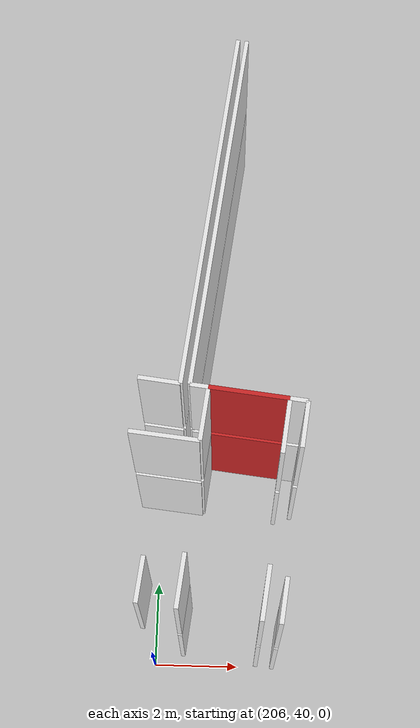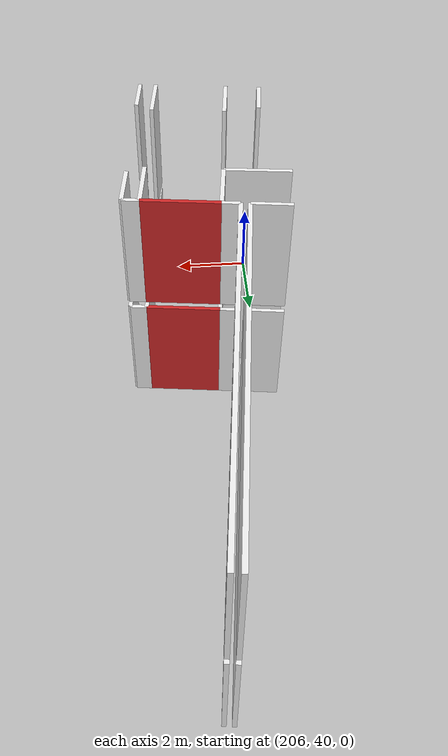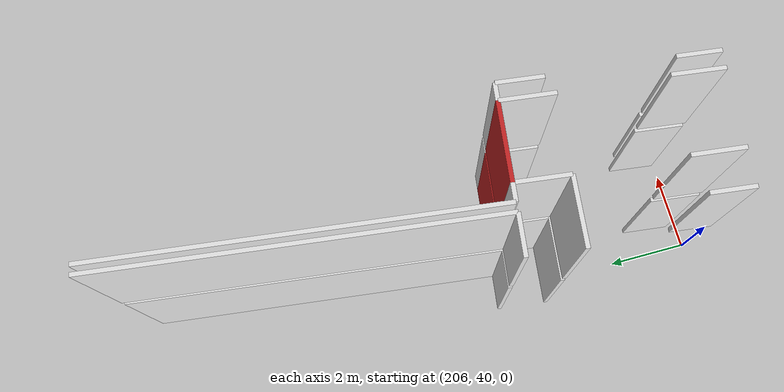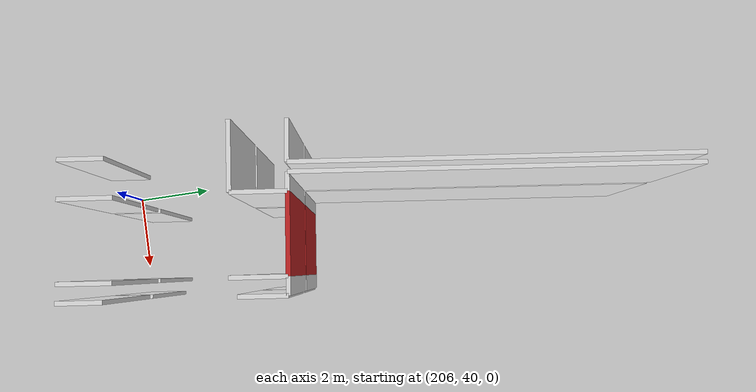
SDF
<sdf version="1.6">
 <world name="default">
  <model name="wall_208.1_45.0_0.0">
   <static>true</static>
   <pose>208.09500000000116 45.0 1.5 0 0 3.0193009299849303</pose>
   <link name="link">
    <visual name="visual">
     <geometry><box><size>1.8034688796345346 0.1 3</size></box></geometry>
     <material>
      <script><uri>file://media/materials/scripts/gazebo.material</uri><name>Gazebo/Red</name></script>
     </material>
    </visual>
   </link>
  </model>
  <model name="wall_207.1_49.6_0.0">
   <static>true</static>
   <pose>207.11999999999534 49.62000000011176 1.5 0 0 -1.6918235466009592</pose>
   <link name="link">
    <visual name="visual">
     <geometry><box><size>8.945434589662185 0.1 3</size></box></geometry>
     <material>
      <script><uri>file://media/materials/scripts/gazebo.material</uri><name>Gazebo/White</name></script>
     </material>
    </visual>
   </link>
  </model>
  <model name="wall_206.1_45.2_0.0">
   <static>true</static>
   <pose>206.11000000001513 45.23999999999069 1.5 0 0 3.0146198643464803</pose>
   <link name="link">
    <visual name="visual">
     <geometry><box><size>0.9476286191960649 0.1 3</size></box></geometry>
     <material>
      <script><uri>file://media/materials/scripts/gazebo.material</uri><name>Gazebo/White</name></script>
     </material>
    </visual>
   </link>
  </model>
  <model name="wall_208.5_40.6_0.0">
   <static>true</static>
   <pose>208.52499999999418 40.625 1.5 0 0 -1.6961854470647963</pose>
   <link name="link">
    <visual name="visual">
     <geometry><box><size>1.1994165252174924 0.1 3</size></box></geometry>
     <material>
      <script><uri>file://media/materials/scripts/gazebo.material</uri><name>Gazebo/White</name></script>
     </material>
    </visual>
   </link>
  </model>
  <model name="wall_206.7_40.8_0.0">
   <static>true</static>
   <pose>206.7399999999907 40.83500000019558 1.5 0 0 1.4536875822110042</pose>
   <link name="link">
    <visual name="visual">
     <geometry><box><size>1.198206993749794 0.1 3</size></box></geometry>
     <material>
      <script><uri>file://media/materials/scripts/gazebo.material</uri><name>Gazebo/White</name></script>
     </material>
    </visual>
   </link>
  </model>
  <model name="wall_206.3_44.0_0.0">
   <static>true</static>
   <pose>206.26999999998952 43.96999999997206 1.5 0 0 -0.11487660552311749</pose>
   <link name="link">
    <visual name="visual">
     <geometry><box><size>1.5703502794131905 0.1 3</size></box></geometry>
     <material>
      <script><uri>file://media/materials/scripts/gazebo.material</uri><name>Gazebo/White</name></script>
     </material>
    </visual>
   </link>
  </model>
  <model name="wall_207.1_44.5_0.0">
   <static>true</static>
   <pose>207.125 44.49499999987893 1.5 0 0 1.4494443262036614</pose>
   <link name="link">
    <visual name="visual">
     <geometry><box><size>1.239112585668132 0.1 3</size></box></geometry>
     <material>
      <script><uri>file://media/materials/scripts/gazebo.material</uri><name>Gazebo/White</name></script>
     </material>
    </visual>
   </link>
  </model>
  <model name="wall_208.9_44.3_0.0">
   <static>true</static>
   <pose>208.91500000000815 44.265000000130385 1.5 0 0 -1.690225252785692</pose>
   <link name="link">
    <visual name="visual">
     <geometry><box><size>1.258967831197256 0.1 3</size></box></geometry>
     <material>
      <script><uri>file://media/materials/scripts/gazebo.material</uri><name>Gazebo/White</name></script>
     </material>
    </visual>
   </link>
  </model>
  <model name="wall_209.3_44.3_0.0">
   <static>true</static>
   <pose>209.32500000001164 44.30999999982305 1.5 0 0 1.4487642084439392</pose>
   <link name="link">
    <visual name="visual">
     <geometry><box><size>1.0679419460437327 0.1 3</size></box></geometry>
     <material>
      <script><uri>file://media/materials/scripts/gazebo.material</uri><name>Gazebo/White</name></script>
     </material>
    </visual>
   </link>
  </model>
  <model name="wall_209.2_44.9_0.0">
   <static>true</static>
   <pose>209.19000000000233 44.86499999999069 1.5 0 0 3.01723765836245</pose>
   <link name="link">
    <visual name="visual">
     <geometry><box><size>0.4031128874726857 0.1 3</size></box></geometry>
     <material>
      <script><uri>file://media/materials/scripts/gazebo.material</uri><name>Gazebo/White</name></script>
     </material>
    </visual>
   </link>
  </model>
  <model name="wall_207.0_45.1_0.0">
   <static>true</static>
   <pose>206.99499999999534 45.13500000000931 1.5 0 0 3.0202406523571135</pose>
   <link name="link">
    <visual name="visual">
     <geometry><box><size>0.4130375286274464 0.1 3</size></box></geometry>
     <material>
      <script><uri>file://media/materials/scripts/gazebo.material</uri><name>Gazebo/White</name></script>
     </material>
    </visual>
   </link>
  </model>
  <model name="wall_207.3_49.6_0.0">
   <static>true</static>
   <pose>207.3299999999872 49.59499999997206 1.5 0 0 1.4496339921322956</pose>
   <link name="link">
    <visual name="visual">
     <geometry><box><size>8.935507819578973 0.1 3</size></box></geometry>
     <material>
      <script><uri>file://media/materials/scripts/gazebo.material</uri><name>Gazebo/White</name></script>
     </material>
    </visual>
   </link>
  </model>
  <model name="wall_208.9_40.5_0.0">
   <static>true</static>
   <pose>208.9099999999744 40.47500000009313 1.5 0 0 1.4501726582463998</pose>
   <link name="link">
    <visual name="visual">
     <geometry><box><size>0.9972462085370126 0.1 3</size></box></geometry>
     <material>
      <script><uri>file://media/materials/scripts/gazebo.material</uri><name>Gazebo/White</name></script>
     </material>
    </visual>
   </link>
  </model>
  <model name="wall_208.1_45.0_3.2">
   <static>true</static>
   <pose>208.09500000000116 45.0 4.7 0 0 3.0193009299849303</pose>
   <link name="link">
    <visual name="visual">
     <geometry><box><size>1.8034688796345346 0.1 3</size></box></geometry>
     <material>
      <script><uri>file://media/materials/scripts/gazebo.material</uri><name>Gazebo/Red</name></script>
     </material>
    </visual>
   </link>
  </model>
  <model name="wall_207.1_49.6_3.2">
   <static>true</static>
   <pose>207.11999999999534 49.62000000011176 4.7 0 0 -1.6918235466009592</pose>
   <link name="link">
    <visual name="visual">
     <geometry><box><size>8.945434589662185 0.1 3</size></box></geometry>
     <material>
      <script><uri>file://media/materials/scripts/gazebo.material</uri><name>Gazebo/White</name></script>
     </material>
    </visual>
   </link>
  </model>
  <model name="wall_206.1_45.2_3.2">
   <static>true</static>
   <pose>206.11000000001513 45.23999999999069 4.7 0 0 3.0146198643464803</pose>
   <link name="link">
    <visual name="visual">
     <geometry><box><size>0.9476286191960649 0.1 3</size></box></geometry>
     <material>
      <script><uri>file://media/materials/scripts/gazebo.material</uri><name>Gazebo/White</name></script>
     </material>
    </visual>
   </link>
  </model>
  <model name="wall_208.5_40.6_3.2">
   <static>true</static>
   <pose>208.52499999999418 40.625 4.7 0 0 -1.6961854470647963</pose>
   <link name="link">
    <visual name="visual">
     <geometry><box><size>1.1994165252174924 0.1 3</size></box></geometry>
     <material>
      <script><uri>file://media/materials/scripts/gazebo.material</uri><name>Gazebo/White</name></script>
     </material>
    </visual>
   </link>
  </model>
  <model name="wall_206.7_40.8_3.2">
   <static>true</static>
   <pose>206.7399999999907 40.83500000019558 4.7 0 0 1.4536875822110042</pose>
   <link name="link">
    <visual name="visual">
     <geometry><box><size>1.198206993749794 0.1 3</size></box></geometry>
     <material>
      <script><uri>file://media/materials/scripts/gazebo.material</uri><name>Gazebo/White</name></script>
     </material>
    </visual>
   </link>
  </model>
  <model name="wall_206.3_44.0_3.2">
   <static>true</static>
   <pose>206.26999999998952 43.96999999997206 4.7 0 0 -0.11487660552311749</pose>
   <link name="link">
    <visual name="visual">
     <geometry><box><size>1.5703502794131905 0.1 3</size></box></geometry>
     <material>
      <script><uri>file://media/materials/scripts/gazebo.material</uri><name>Gazebo/White</name></script>
     </material>
    </visual>
   </link>
  </model>
  <model name="wall_207.1_44.5_3.2">
   <static>true</static>
   <pose>207.125 44.49499999987893 4.7 0 0 1.4494443262036614</pose>
   <link name="link">
    <visual name="visual">
     <geometry><box><size>1.239112585668132 0.1 3</size></box></geometry>
     <material>
      <script><uri>file://media/materials/scripts/gazebo.material</uri><name>Gazebo/White</name></script>
     </material>
    </visual>
   </link>
  </model>
  <model name="wall_208.9_44.3_3.2">
   <static>true</static>
   <pose>208.91500000000815 44.265000000130385 4.7 0 0 -1.690225252785692</pose>
   <link name="link">
    <visual name="visual">
     <geometry><box><size>1.258967831197256 0.1 3</size></box></geometry>
     <material>
      <script><uri>file://media/materials/scripts/gazebo.material</uri><name>Gazebo/White</name></script>
     </material>
    </visual>
   </link>
  </model>
  <model name="wall_209.3_44.3_3.2">
   <static>true</static>
   <pose>209.32500000001164 44.30999999982305 4.7 0 0 1.4487642084439392</pose>
   <link name="link">
    <visual name="visual">
     <geometry><box><size>1.0679419460437327 0.1 3</size></box></geometry>
     <material>
      <script><uri>file://media/materials/scripts/gazebo.material</uri><name>Gazebo/White</name></script>
     </material>
    </visual>
   </link>
  </model>
  <model name="wall_209.2_44.9_3.2">
   <static>true</static>
   <pose>209.19000000000233 44.86499999999069 4.7 0 0 3.01723765836245</pose>
   <link name="link">
    <visual name="visual">
     <geometry><box><size>0.4031128874726857 0.1 3</size></box></geometry>
     <material>
      <script><uri>file://media/materials/scripts/gazebo.material</uri><name>Gazebo/White</name></script>
     </material>
    </visual>
   </link>
  </model>
  <model name="wall_207.0_45.1_3.2">
   <static>true</static>
   <pose>206.99499999999534 45.13500000000931 4.7 0 0 3.0202406523571135</pose>
   <link name="link">
    <visual name="visual">
     <geometry><box><size>0.4130375286274464 0.1 3</size></box></geometry>
     <material>
      <script><uri>file://media/materials/scripts/gazebo.material</uri><name>Gazebo/White</name></script>
     </material>
    </visual>
   </link>
  </model>
  <model name="wall_207.3_49.6_3.2">
   <static>true</static>
   <pose>207.3299999999872 49.59499999997206 4.7 0 0 1.4496339921322956</pose>
   <link name="link">
    <visual name="visual">
     <geometry><box><size>8.935507819578973 0.1 3</size></box></geometry>
     <material>
      <script><uri>file://media/materials/scripts/gazebo.material</uri><name>Gazebo/White</name></script>
     </material>
    </visual>
   </link>
  </model>
  <model name="wall_205.9_40.8_3.2">
   <static>true</static>
   <pose>205.89000000001397 40.83999999985099 4.7 0 0 -1.6902252528086446</pose>
   <link name="link">
    <visual name="visual">
     <geometry><box><size>1.0071742649605788 0.1 3</size></box></geometry>
     <material>
      <script><uri>file://media/materials/scripts/gazebo.material</uri><name>Gazebo/White</name></script>
     </material>
    </visual>
   </link>
  </model>
  <model name="wall_208.9_40.5_3.2">
   <static>true</static>
   <pose>208.9099999999744 40.47500000009313 4.7 0 0 1.4501726582463998</pose>
   <link name="link">
    <visual name="visual">
     <geometry><box><size>0.9972462085370126 0.1 3</size></box></geometry>
     <material>
      <script><uri>file://media/materials/scripts/gazebo.material</uri><name>Gazebo/White</name></script>
     </material>
    </visual>
   </link>
  </model>
 </world>
</sdf>
